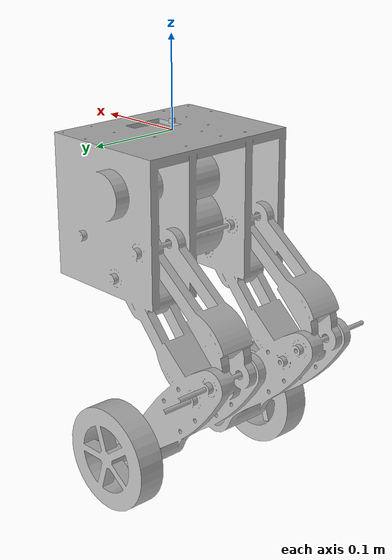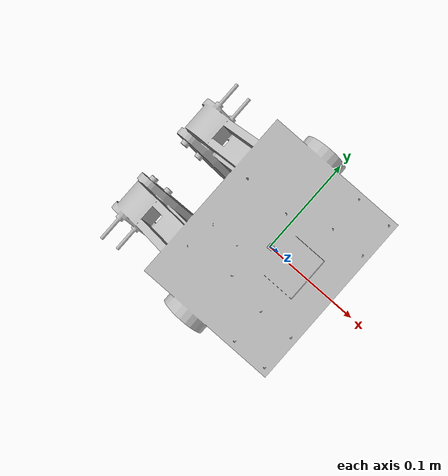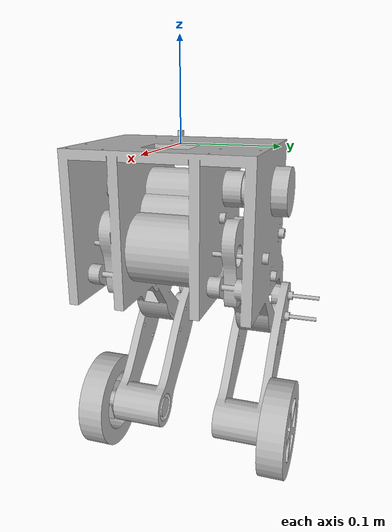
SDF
<?xml version="1.0" ?>
<sdf version='1.7'>
  <model name='jumpbot'>

    <link name='base_link'>
      <inertial>
        <pose>-0.034481 -1.7e-05 -0.138023 0 -0 0</pose>
        <mass>0.11881</mass>
        <inertia>
          <ixx>0.00261912</ixx>
          <ixy>4.15999e-08</ixy>
          <ixz>0.000378048</ixz>
          <iyy>0.0046951</iyy>
          <iyz>-8.21951e-09</iyz>
          <izz>0.00304927</izz>
        </inertia>
      </inertial>
      <collision name='base_link_collision'>
        <pose>0 0 0 0 -0 0</pose>
        <geometry>
          <mesh>
            <scale>1 1 1</scale>
            <uri>/home/mosiwon/ws_jbbot/jumpbot/meshes/jumpbot/base_link.STL</uri>
          </mesh>
        </geometry>
      </collision>

      <collision name='base_link_fixed_joint_lump__imu_link_collision_2'>
              <pose>0 0 0.01 0 -0 0</pose>
              <geometry>
                <box>
                  <size>0.005 0.005 0.005</size>
                </box>
              </geometry>
              <surface>
                <contact>
                  <ode/>
                </contact>
                <friction>
                  <ode/>
                </friction>
              </surface>
            </collision>

      <visual name='base_link_visual'>
        <pose>0 0 0 0 -0 0</pose>
        <geometry>
          <mesh>
            <scale>1 1 1</scale>
            <uri>/home/mosiwon/ws_jbbot/jumpbot/meshes/jumpbot/base_link.STL</uri>
          </mesh>
        </geometry>
      </visual>

      <visual name='base_link_fixed_joint_lump__imu_link_visual_2'>
              <pose>0 0 0.01 0 -0 0</pose>
              <geometry>
                <box>
                  <size>0.005 0.005 0.005</size>
                </box>
              </geometry>
            </visual>

      <sensor name='imu_sensor' type='imu'>
              <plugin name='imu_plugin' filename='libgazebo_ros_imu_sensor.so'>
                <ros>
                  <namespace>/demo</namespace>
                  <remapping>~/out:=imu</remapping>
                </ros>
                <initial_orientation_as_reference>0</initial_orientation_as_reference>
              </plugin>
              <always_on>1</always_on>
              <update_rate>10</update_rate>
              <visualize>1</visualize>
              <imu>
                <angular_velocity>
                  <x>
                    <noise type='gaussian'>
                      <mean>0</mean>
                      <stddev>0.0002</stddev>
                      <bias_mean>7.5e-06</bias_mean>
                      <bias_stddev>8e-07</bias_stddev>
                    </noise>
                  </x>
                  <y>
                    <noise type='gaussian'>
                      <mean>0</mean>
                      <stddev>0.0002</stddev>
                      <bias_mean>7.5e-06</bias_mean>
                      <bias_stddev>8e-07</bias_stddev>
                    </noise>
                  </y>
                  <z>
                    <noise type='gaussian'>
                      <mean>0</mean>
                      <stddev>0.0002</stddev>
                      <bias_mean>7.5e-06</bias_mean>
                      <bias_stddev>8e-07</bias_stddev>
                    </noise>
                  </z>
                </angular_velocity>
                <linear_acceleration>
                  <x>
                    <noise type='gaussian'>
                      <mean>0</mean>
                      <stddev>0.017</stddev>
                      <bias_mean>0.1</bias_mean>
                      <bias_stddev>0.001</bias_stddev>
                    </noise>
                  </x>
                  <y>
                    <noise type='gaussian'>
                      <mean>0</mean>
                      <stddev>0.017</stddev>
                      <bias_mean>0.1</bias_mean>
                      <bias_stddev>0.001</bias_stddev>
                    </noise>
                  </y>
                  <z>
                    <noise type='gaussian'>
                      <mean>0</mean>
                      <stddev>0.017</stddev>
                      <bias_mean>0.1</bias_mean>
                      <bias_stddev>0.001</bias_stddev>
                    </noise>
                  </z>
                </linear_acceleration>
              </imu>
              <pose>0 0 0.01 0 0 0</pose>
      </sensor>

    </link>
    <joint name='left_joint' type='revolute'>
      <pose relative_to='base_link'>-0.028707 0.12398 -0.32783 0 -0 0</pose>
      <parent>base_link</parent>
      <child>left_link</child>
      <axis>
        <xyz>2.6e-05 1 -0.000263</xyz>
        <limit>
          <effort>1</effort>
          <velocity>1</velocity>
          <lower>-1e+16</lower>
          <upper>1e+16</upper>
        </limit>
        <dynamics>
          <spring_reference>0</spring_reference>
          <spring_stiffness>0</spring_stiffness>
        </dynamics>
      </axis>
    </joint>
    <link name='left_link'>
      <pose relative_to='left_joint'>0 0 0 0 -0 0</pose>
      <inertial>
        <pose>-0 -0.019813 -0 0 -0 0</pose>
        <mass>0.22927</mass>
        <inertia>
          <ixx>0.00029401</ixx>
          <ixy>-4.0767e-21</ixy>
          <ixz>-1.9921e-20</ixz>
          <iyy>0.00043465</iyy>
          <iyz>-5.0517e-21</iyz>
          <izz>0.00029401</izz>
        </inertia>
      </inertial>
      <collision name='left_link_collision'>
        <pose>0 0 0 0 -0 0</pose>
        <geometry>
          <mesh>
            <scale>1 1 1</scale>
            <uri>/home/mosiwon/ws_jbbot/jumpbot/meshes/jumpbot/left_link.STL</uri>
          </mesh>
        </geometry>
      </collision>
      <visual name='left_link_visual'>
        <pose>0 0 0 0 -0 0</pose>
        <geometry>
          <mesh>
            <scale>1 1 1</scale>
            <uri>/home/mosiwon/ws_jbbot/jumpbot/meshes/jumpbot/left_link.STL</uri>
          </mesh>
        </geometry>
      </visual>
    </link>
    <joint name='right_join' type='revolute'>
      <pose relative_to='base_link'>-0.028714 -0.12402 -0.32777 0 -0 0</pose>
      <parent>base_link</parent>
      <child>right_link</child>
      <axis>
        <xyz>2.6e-05 1 -0.000263</xyz>
        <limit>
          <effort>1</effort>
          <velocity>1</velocity>
          <lower>-1e+16</lower>
          <upper>1e+16</upper>
        </limit>
        <dynamics>
          <spring_reference>0</spring_reference>
          <spring_stiffness>0</spring_stiffness>
        </dynamics>
      </axis>
    </joint>
    <link name='right_link'>
      <pose relative_to='right_join'>0 0 0 0 -0 0</pose>
      <inertial>
        <pose>-0 0.019813 0 0 -0 0</pose>
        <mass>0.22927</mass>
        <inertia>
          <ixx>0.00029401</ixx>
          <ixy>3.4207e-19</ixy>
          <ixz>-1.1511e-20</ixz>
          <iyy>0.00043465</iyy>
          <iyz>-1.3676e-19</iyz>
          <izz>0.00029401</izz>
        </inertia>
      </inertial>
      <collision name='right_link_collision'>
        <pose>0 0 0 0 -0 0</pose>
        <geometry>
          <mesh>
            <scale>1 1 1</scale>
            <uri>/home/mosiwon/ws_jbbot/jumpbot/meshes/jumpbot/right_link.STL</uri>
          </mesh>
        </geometry>
      </collision>
      <visual name='right_link_visual'>
        <pose>0 0 0 0 -0 0</pose>
        <geometry>
          <mesh>
            <scale>1 1 1</scale>
            <uri>/home/mosiwon/ws_jbbot/jumpbot/meshes/jumpbot/right_link.STL</uri>
          </mesh>
        </geometry>
      </visual>
    </link>

    <plugin name='diff_drive' filename='libgazebo_ros_diff_drive.so'>
      <ros>
        <namespace>/demo</namespace>
        <remapping>cmd_vel:=cmd_vel</remapping>
        <remapping>odom:=odom</remapping>
      </ros>
      <left_joint>left_joint</left_joint>
      <right_joint>right_join</right_joint>

      <max_wheel_torque>10</max_wheel_torque>
      <max_wheel_acceleration>10.0</max_wheel_acceleration>

      <wheel_separation>0.175</wheel_separation>
      <wheel_diameter>0.0632</wheel_diameter>

      <publish_odom>true</publish_odom>
      <publish_odom_tf>true</publish_odom_tf>
      <publish_wheel_tf>true</publish_wheel_tf>

      <odometry_frame>odom</odometry_frame>
      <robot_base_frame>body</robot_base_frame>
    </plugin>

  </model>
</sdf>
